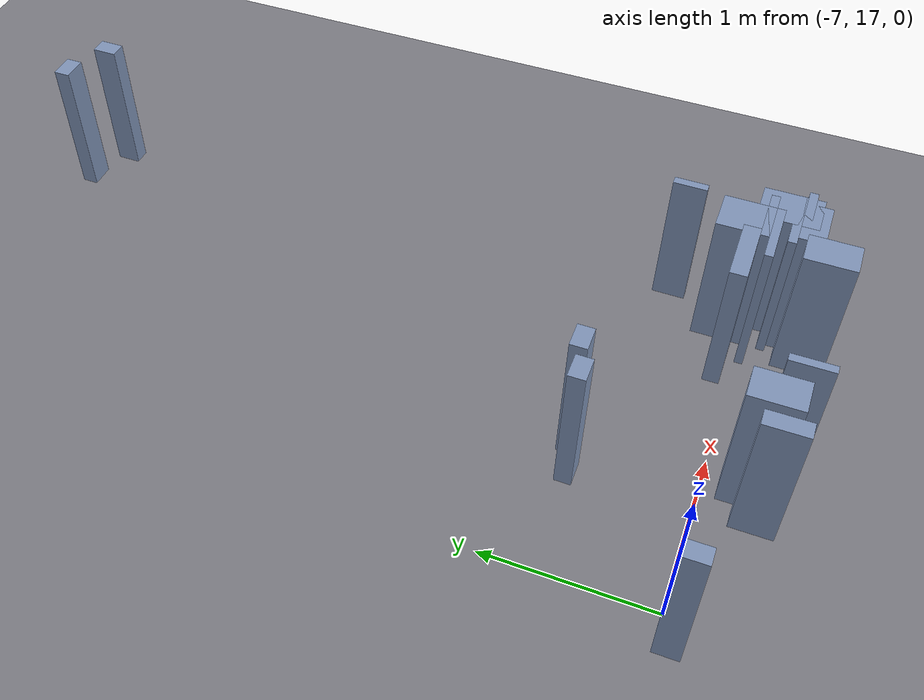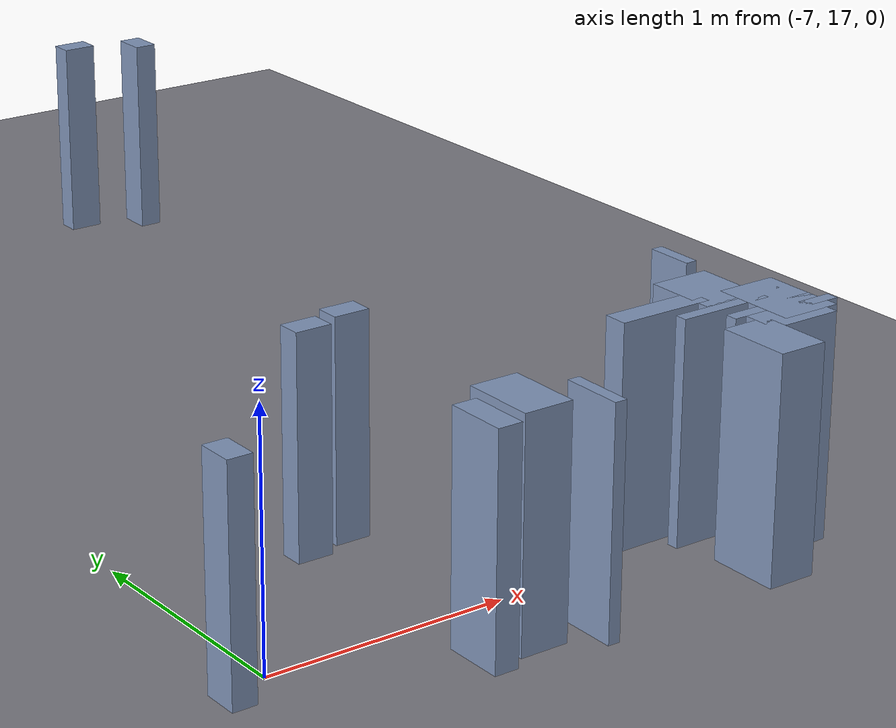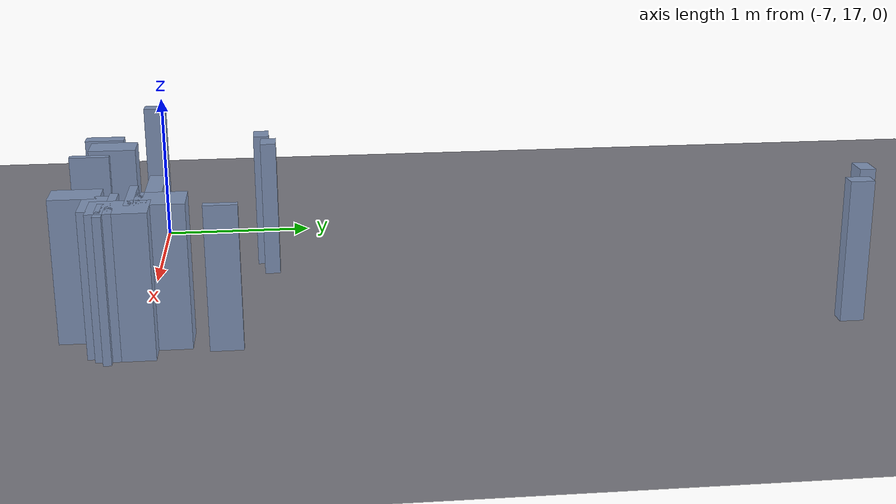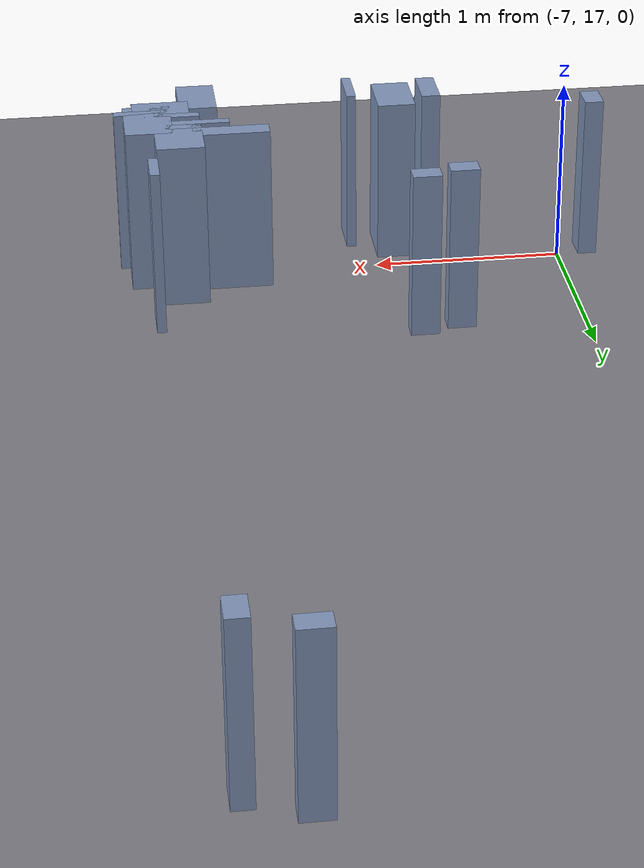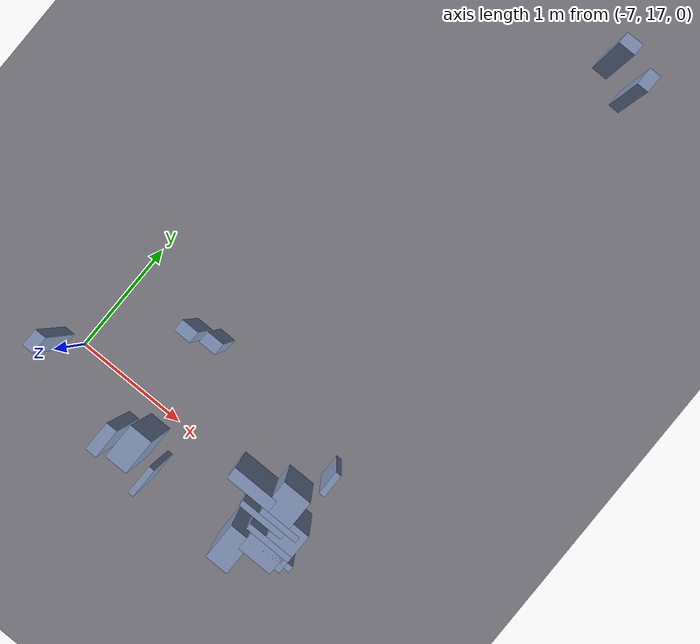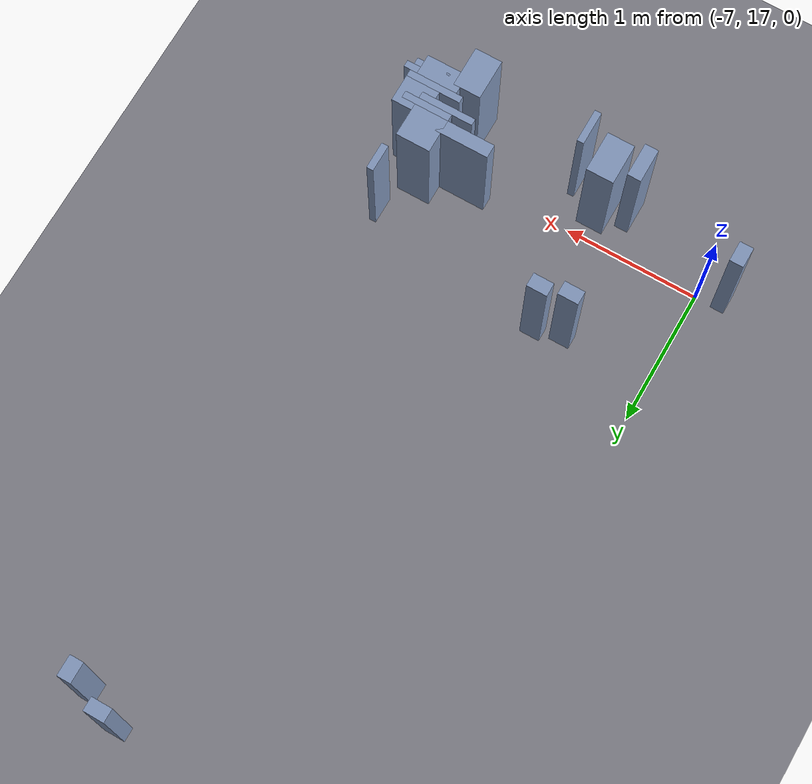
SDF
<sdf version="1.8">
 <world name="capture_fresh">
  <model name="ground_plane">
   <static>true</static>
   <link name="link">
    <collision name="collision">
     <geometry><plane><normal>0 0 1</normal><size>80 80</size></plane></geometry>
    </collision>
    <visual name="visual">
     <geometry><plane><normal>0 0 1</normal><size>80 80</size></plane></geometry>
     <material><ambient>0.40 0.40 0.42 1</ambient><diffuse>0.48 0.48 0.51 1</diffuse></material>
    </visual>
   </link>
  </model>
  <model name="obstacle_01">
   <static>true</static>
   <pose>-5.143 21.458 0.450 0 0 0</pose>
   <link name="link">
    <collision name="collision"><geometry><box><size>0.150 0.100 0.900</size></box></geometry></collision>
    <visual name="visual">
     <geometry><box><size>0.150 0.100 0.900</size></box></geometry>
     <material>
      <ambient>0.42 0.48 0.58 1</ambient>
      <diffuse>0.50 0.58 0.72 1</diffuse>
      <specular>0.15 0.15 0.15 1</specular>
     </material>
    </visual>
   </link>
  </model>
  <model name="obstacle_02">
   <static>true</static>
   <pose>-4.868 21.333 0.450 0 0 0</pose>
   <link name="link">
    <collision name="collision"><geometry><box><size>0.100 0.150 0.900</size></box></geometry></collision>
    <visual name="visual">
     <geometry><box><size>0.100 0.150 0.900</size></box></geometry>
     <material>
      <ambient>0.42 0.48 0.58 1</ambient>
      <diffuse>0.50 0.58 0.72 1</diffuse>
      <specular>0.15 0.15 0.15 1</specular>
     </material>
    </visual>
   </link>
  </model>
  <model name="obstacle_03">
   <static>true</static>
   <pose>-6.143 17.758 0.450 0 0 0</pose>
   <link name="link">
    <collision name="collision"><geometry><box><size>0.150 0.100 0.900</size></box></geometry></collision>
    <visual name="visual">
     <geometry><box><size>0.150 0.100 0.900</size></box></geometry>
     <material>
      <ambient>0.42 0.48 0.58 1</ambient>
      <diffuse>0.50 0.58 0.72 1</diffuse>
      <specular>0.15 0.15 0.15 1</specular>
     </material>
    </visual>
   </link>
  </model>
  <model name="obstacle_04">
   <static>true</static>
   <pose>-6.343 17.708 0.450 0 0 0</pose>
   <link name="link">
    <collision name="collision"><geometry><box><size>0.150 0.100 0.900</size></box></geometry></collision>
    <visual name="visual">
     <geometry><box><size>0.150 0.100 0.900</size></box></geometry>
     <material>
      <ambient>0.42 0.48 0.58 1</ambient>
      <diffuse>0.50 0.58 0.72 1</diffuse>
      <specular>0.15 0.15 0.15 1</specular>
     </material>
    </visual>
   </link>
  </model>
  <model name="obstacle_05">
   <static>true</static>
   <pose>-4.793 17.508 0.450 0 0 0</pose>
   <link name="link">
    <collision name="collision"><geometry><box><size>0.050 0.200 0.900</size></box></geometry></collision>
    <visual name="visual">
     <geometry><box><size>0.050 0.200 0.900</size></box></geometry>
     <material>
      <ambient>0.42 0.48 0.58 1</ambient>
      <diffuse>0.50 0.58 0.72 1</diffuse>
      <specular>0.15 0.15 0.15 1</specular>
     </material>
    </visual>
   </link>
  </model>
  <model name="obstacle_11">
   <static>true</static>
   <pose>-5.218 17.108 0.450 0 0 0</pose>
   <link name="link">
    <collision name="collision"><geometry><box><size>0.400 0.100 0.900</size></box></geometry></collision>
    <visual name="visual">
     <geometry><box><size>0.400 0.100 0.900</size></box></geometry>
     <material>
      <ambient>0.42 0.48 0.58 1</ambient>
      <diffuse>0.50 0.58 0.72 1</diffuse>
      <specular>0.15 0.15 0.15 1</specular>
     </material>
    </visual>
   </link>
  </model>
  <model name="obstacle_12">
   <static>true</static>
   <pose>-4.893 17.033 0.450 0 0 0</pose>
   <link name="link">
    <collision name="collision"><geometry><box><size>0.350 0.050 0.900</size></box></geometry></collision>
    <visual name="visual">
     <geometry><box><size>0.350 0.050 0.900</size></box></geometry>
     <material>
      <ambient>0.42 0.48 0.58 1</ambient>
      <diffuse>0.50 0.58 0.72 1</diffuse>
      <specular>0.15 0.15 0.15 1</specular>
     </material>
    </visual>
   </link>
  </model>
  <model name="obstacle_16">
   <static>true</static>
   <pose>-5.018 16.983 0.450 0 0 0</pose>
   <link name="link">
    <collision name="collision"><geometry><box><size>0.400 0.050 0.900</size></box></geometry></collision>
    <visual name="visual">
     <geometry><box><size>0.400 0.050 0.900</size></box></geometry>
     <material>
      <ambient>0.42 0.48 0.58 1</ambient>
      <diffuse>0.50 0.58 0.72 1</diffuse>
      <specular>0.15 0.15 0.15 1</specular>
     </material>
    </visual>
   </link>
  </model>
  <model name="obstacle_21">
   <static>true</static>
   <pose>-4.943 17.158 0.450 0 0 0</pose>
   <link name="link">
    <collision name="collision"><geometry><box><size>0.250 0.300 0.900</size></box></geometry></collision>
    <visual name="visual">
     <geometry><box><size>0.250 0.300 0.900</size></box></geometry>
     <material>
      <ambient>0.42 0.48 0.58 1</ambient>
      <diffuse>0.50 0.58 0.72 1</diffuse>
      <specular>0.15 0.15 0.15 1</specular>
     </material>
    </visual>
   </link>
  </model>
  <model name="obstacle_22">
   <static>true</static>
   <pose>-4.868 16.883 0.450 0 0 0</pose>
   <link name="link">
    <collision name="collision"><geometry><box><size>0.400 0.050 0.900</size></box></geometry></collision>
    <visual name="visual">
     <geometry><box><size>0.400 0.050 0.900</size></box></geometry>
     <material>
      <ambient>0.42 0.48 0.58 1</ambient>
      <diffuse>0.50 0.58 0.72 1</diffuse>
      <specular>0.15 0.15 0.15 1</specular>
     </material>
    </visual>
   </link>
  </model>
  <model name="obstacle_24">
   <static>true</static>
   <pose>-4.743 16.833 0.450 0 0 0</pose>
   <link name="link">
    <collision name="collision"><geometry><box><size>0.250 0.050 0.900</size></box></geometry></collision>
    <visual name="visual">
     <geometry><box><size>0.250 0.050 0.900</size></box></geometry>
     <material>
      <ambient>0.42 0.48 0.58 1</ambient>
      <diffuse>0.50 0.58 0.72 1</diffuse>
      <specular>0.15 0.15 0.15 1</specular>
     </material>
    </visual>
   </link>
  </model>
  <model name="obstacle_25">
   <static>true</static>
   <pose>-7.168 16.933 0.450 0 0 0</pose>
   <link name="link">
    <collision name="collision"><geometry><box><size>0.100 0.150 0.900</size></box></geometry></collision>
    <visual name="visual">
     <geometry><box><size>0.100 0.150 0.900</size></box></geometry>
     <material>
      <ambient>0.42 0.48 0.58 1</ambient>
      <diffuse>0.50 0.58 0.72 1</diffuse>
      <specular>0.15 0.15 0.15 1</specular>
     </material>
    </visual>
   </link>
  </model>
  <model name="obstacle_26">
   <static>true</static>
   <pose>-4.868 16.783 0.450 0 0 0</pose>
   <link name="link">
    <collision name="collision"><geometry><box><size>0.300 0.150 0.900</size></box></geometry></collision>
    <visual name="visual">
     <geometry><box><size>0.300 0.150 0.900</size></box></geometry>
     <material>
      <ambient>0.42 0.48 0.58 1</ambient>
      <diffuse>0.50 0.58 0.72 1</diffuse>
      <specular>0.15 0.15 0.15 1</specular>
     </material>
    </visual>
   </link>
  </model>
  <model name="obstacle_29">
   <static>true</static>
   <pose>-4.793 16.933 0.450 0 0 0</pose>
   <link name="link">
    <collision name="collision"><geometry><box><size>0.250 0.350 0.900</size></box></geometry></collision>
    <visual name="visual">
     <geometry><box><size>0.250 0.350 0.900</size></box></geometry>
     <material>
      <ambient>0.42 0.48 0.58 1</ambient>
      <diffuse>0.50 0.58 0.72 1</diffuse>
      <specular>0.15 0.15 0.15 1</specular>
     </material>
    </visual>
   </link>
  </model>
  <model name="obstacle_34">
   <static>true</static>
   <pose>-6.318 16.683 0.450 0 0 0</pose>
   <link name="link">
    <collision name="collision"><geometry><box><size>0.100 0.250 0.900</size></box></geometry></collision>
    <visual name="visual">
     <geometry><box><size>0.100 0.250 0.900</size></box></geometry>
     <material>
      <ambient>0.42 0.48 0.58 1</ambient>
      <diffuse>0.50 0.58 0.72 1</diffuse>
      <specular>0.15 0.15 0.15 1</specular>
     </material>
    </visual>
   </link>
  </model>
  <model name="obstacle_35">
   <static>true</static>
   <pose>-6.118 16.758 0.450 0 0 0</pose>
   <link name="link">
    <collision name="collision"><geometry><box><size>0.200 0.300 0.900</size></box></geometry></collision>
    <visual name="visual">
     <geometry><box><size>0.200 0.300 0.900</size></box></geometry>
     <material>
      <ambient>0.42 0.48 0.58 1</ambient>
      <diffuse>0.50 0.58 0.72 1</diffuse>
      <specular>0.15 0.15 0.15 1</specular>
     </material>
    </visual>
   </link>
  </model>
  <model name="obstacle_42">
   <static>true</static>
   <pose>-5.893 16.633 0.450 0 0 0</pose>
   <link name="link">
    <collision name="collision"><geometry><box><size>0.050 0.250 0.900</size></box></geometry></collision>
    <visual name="visual">
     <geometry><box><size>0.050 0.250 0.900</size></box></geometry>
     <material>
      <ambient>0.42 0.48 0.58 1</ambient>
      <diffuse>0.50 0.58 0.72 1</diffuse>
      <specular>0.15 0.15 0.15 1</specular>
     </material>
    </visual>
   </link>
  </model>
  <model name="obstacle_45">
   <static>true</static>
   <pose>-5.068 16.658 0.450 0 0 0</pose>
   <link name="link">
    <collision name="collision"><geometry><box><size>0.200 0.300 0.900</size></box></geometry></collision>
    <visual name="visual">
     <geometry><box><size>0.200 0.300 0.900</size></box></geometry>
     <material>
      <ambient>0.42 0.48 0.58 1</ambient>
      <diffuse>0.50 0.58 0.72 1</diffuse>
      <specular>0.15 0.15 0.15 1</specular>
     </material>
    </visual>
   </link>
  </model>
 </world>
</sdf>
